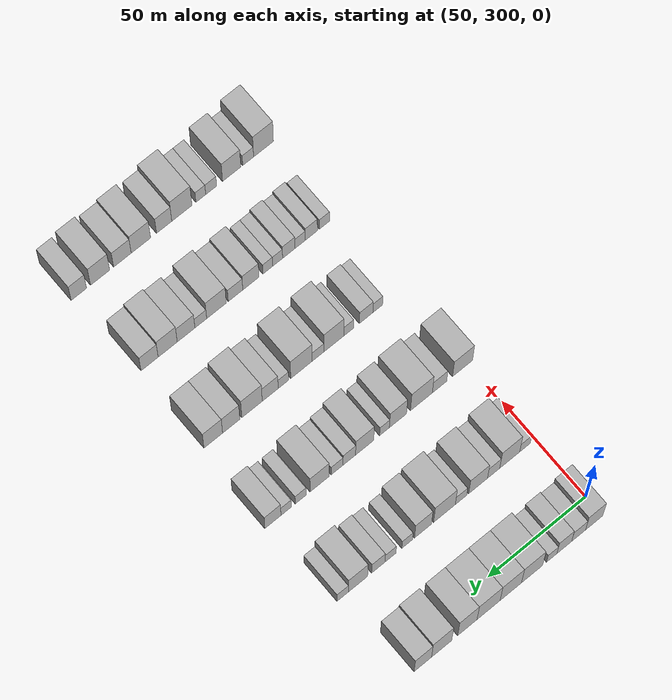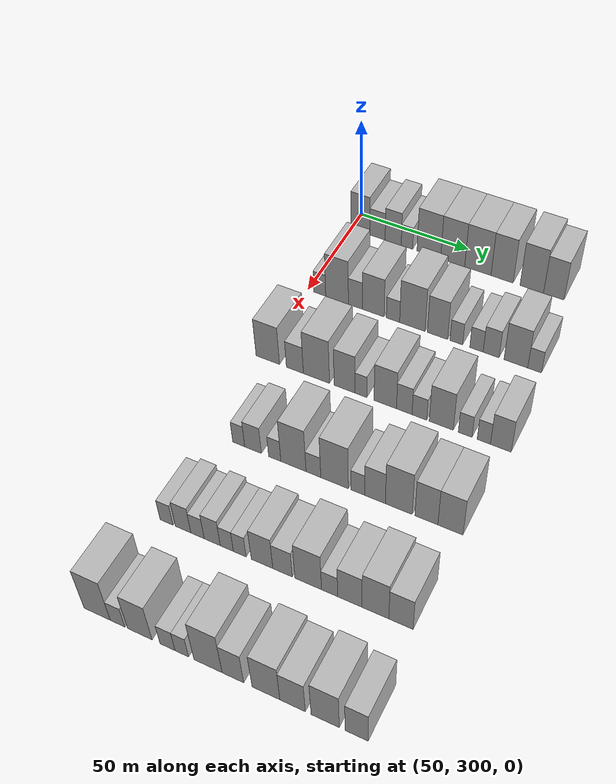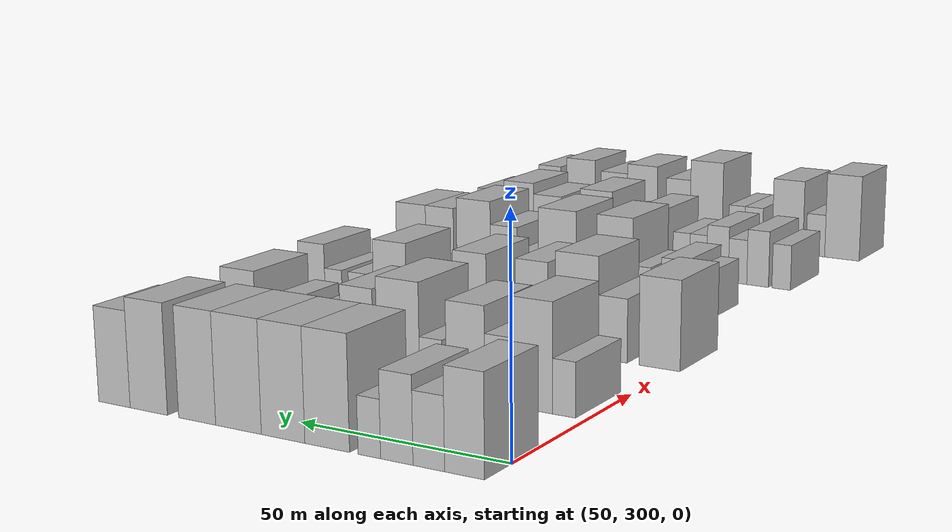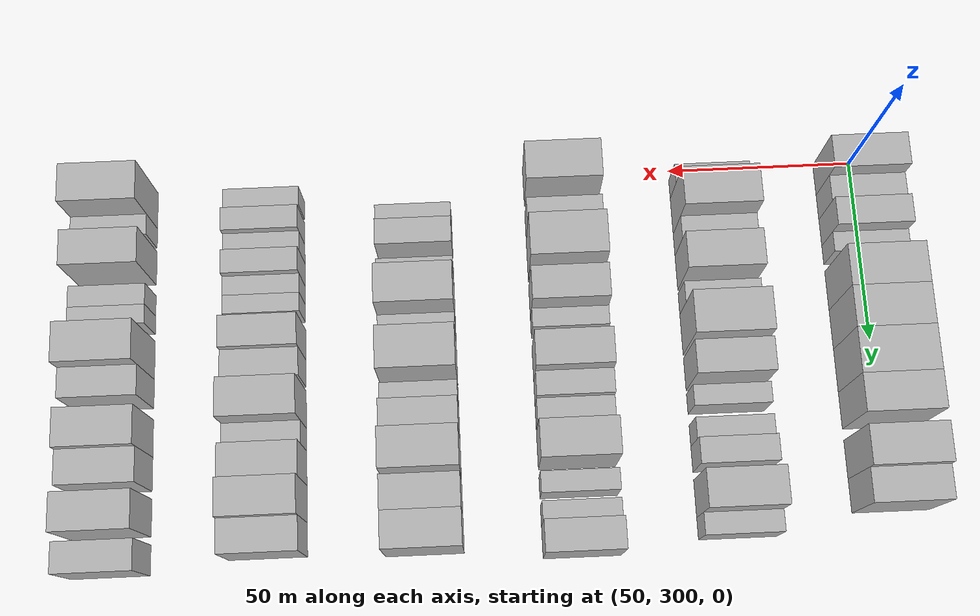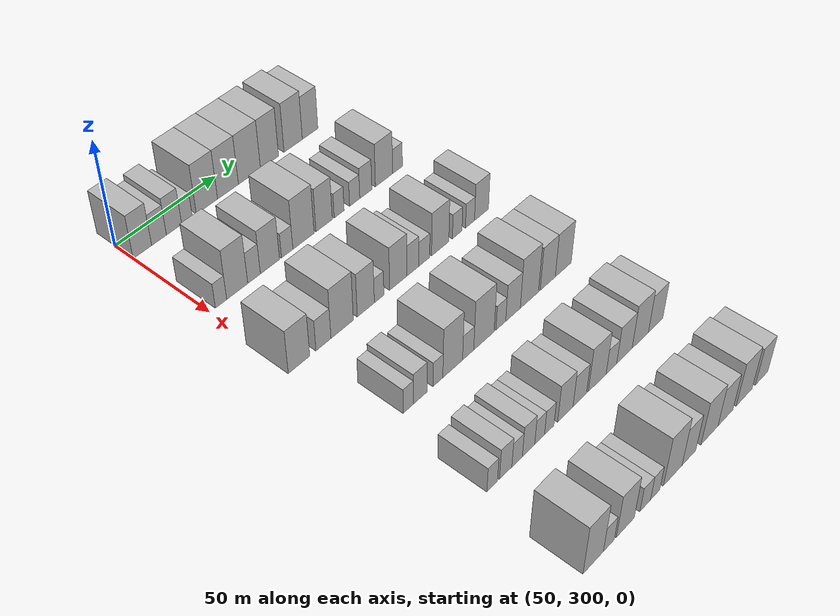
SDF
<sdf version="1.6">
 <world name="default">
  <model name="building_108">
   <static>1</static>
   <pose>50.0000 304.3852 0 0.000000 0.000000 0.000000</pose>
   <link name="link">
    <pose>0 0 10.50 0 0 0</pose>
    <collision name="collision"><geometry><box><size>20.0000 8.8271 21.0000</size></box></geometry></collision>
    <visual name="visual">
     <cast_shadows>0</cast_shadows>
     <geometry><box><size>20.0000 8.8271 21.0000</size></box></geometry>
     <material>
      <script>
       <uri>model://HANNAS_wall/materials/scripts</uri>
       <uri>model://HANNAS_wall/materials/textures</uri>
       <name>vrc/HANNAS_wall</name>
      </script>
     </material>
    </visual>
   </link>
  </model>
  <model name="building_109">
   <static>1</static>
   <pose>50.0000 312.3710 0 0.000000 0.000000 0.000000</pose>
   <link name="link">
    <pose>0 0 7.50 0 0 0</pose>
    <collision name="collision"><geometry><box><size>20.0000 7.1447 15.0000</size></box></geometry></collision>
    <visual name="visual">
     <cast_shadows>0</cast_shadows>
     <geometry><box><size>20.0000 7.1447 15.0000</size></box></geometry>
     <material>
      <script>
       <uri>model://HANNAS_wall/materials/scripts</uri>
       <uri>model://HANNAS_wall/materials/textures</uri>
       <name>vrc/HANNAS_wall</name>
      </script>
     </material>
    </visual>
   </link>
  </model>
  <model name="building_110">
   <static>1</static>
   <pose>50.0000 319.6907 0 0.000000 0.000000 0.000000</pose>
   <link name="link">
    <pose>0 0 9.00 0 0 0</pose>
    <collision name="collision"><geometry><box><size>20.0000 7.4947 18.0000</size></box></geometry></collision>
    <visual name="visual">
     <cast_shadows>0</cast_shadows>
     <geometry><box><size>20.0000 7.4947 18.0000</size></box></geometry>
     <material>
      <script>
       <uri>model://HANNAS_wall/materials/scripts</uri>
       <uri>model://HANNAS_wall/materials/textures</uri>
       <name>vrc/HANNAS_wall</name>
      </script>
     </material>
    </visual>
   </link>
  </model>
  <model name="building_111">
   <static>1</static>
   <pose>50.0000 326.0862 0 0.000000 0.000000 0.000000</pose>
   <link name="link">
    <pose>0 0 6.00 0 0 0</pose>
    <collision name="collision"><geometry><box><size>20.0000 5.2963 12.0000</size></box></geometry></collision>
    <visual name="visual">
     <cast_shadows>0</cast_shadows>
     <geometry><box><size>20.0000 5.2963 12.0000</size></box></geometry>
     <material>
      <script>
       <uri>model://HANNAS_wall/materials/scripts</uri>
       <uri>model://HANNAS_wall/materials/textures</uri>
       <name>vrc/HANNAS_wall</name>
      </script>
     </material>
    </visual>
   </link>
  </model>
  <model name="building_112">
   <static>1</static>
   <pose>50.0000 336.1368 0 0.000000 0.000000 0.000000</pose>
   <link name="link">
    <pose>0 0 12.00 0 0 0</pose>
    <collision name="collision"><geometry><box><size>20.0000 10.8048 24.0000</size></box></geometry></collision>
    <visual name="visual">
     <cast_shadows>0</cast_shadows>
     <geometry><box><size>20.0000 10.8048 24.0000</size></box></geometry>
     <material>
      <script>
       <uri>model://HANNAS_wall/materials/scripts</uri>
       <uri>model://HANNAS_wall/materials/textures</uri>
       <name>vrc/HANNAS_wall</name>
      </script>
     </material>
    </visual>
   </link>
  </model>
  <model name="building_113">
   <static>1</static>
   <pose>50.0000 346.9473 0 0.000000 0.000000 0.000000</pose>
   <link name="link">
    <pose>0 0 12.00 0 0 0</pose>
    <collision name="collision"><geometry><box><size>20.0000 10.8162 24.0000</size></box></geometry></collision>
    <visual name="visual">
     <cast_shadows>0</cast_shadows>
     <geometry><box><size>20.0000 10.8162 24.0000</size></box></geometry>
     <material>
      <script>
       <uri>model://HANNAS_wall/materials/scripts</uri>
       <uri>model://HANNAS_wall/materials/textures</uri>
       <name>vrc/HANNAS_wall</name>
      </script>
     </material>
    </visual>
   </link>
  </model>
  <model name="building_114">
   <static>1</static>
   <pose>50.0000 358.2069 0 0.000000 0.000000 0.000000</pose>
   <link name="link">
    <pose>0 0 12.00 0 0 0</pose>
    <collision name="collision"><geometry><box><size>20.0000 11.7032 24.0000</size></box></geometry></collision>
    <visual name="visual">
     <cast_shadows>0</cast_shadows>
     <geometry><box><size>20.0000 11.7032 24.0000</size></box></geometry>
     <material>
      <script>
       <uri>model://HANNAS_wall/materials/scripts</uri>
       <uri>model://HANNAS_wall/materials/textures</uri>
       <name>vrc/HANNAS_wall</name>
      </script>
     </material>
    </visual>
   </link>
  </model>
  <model name="building_115">
   <static>1</static>
   <pose>50.0000 368.9374 0 0.000000 0.000000 0.000000</pose>
   <link name="link">
    <pose>0 0 12.00 0 0 0</pose>
    <collision name="collision"><geometry><box><size>20.0000 9.7577 24.0000</size></box></geometry></collision>
    <visual name="visual">
     <cast_shadows>0</cast_shadows>
     <geometry><box><size>20.0000 9.7577 24.0000</size></box></geometry>
     <material>
      <script>
       <uri>model://HANNAS_wall/materials/scripts</uri>
       <uri>model://HANNAS_wall/materials/textures</uri>
       <name>vrc/HANNAS_wall</name>
      </script>
     </material>
    </visual>
   </link>
  </model>
  <model name="building_116">
   <static>1</static>
   <pose>50.0000 381.8913 0 0.000000 0.000000 0.000000</pose>
   <link name="link">
    <pose>0 0 12.00 0 0 0</pose>
    <collision name="collision"><geometry><box><size>20.0000 10.1501 24.0000</size></box></geometry></collision>
    <visual name="visual">
     <cast_shadows>0</cast_shadows>
     <geometry><box><size>20.0000 10.1501 24.0000</size></box></geometry>
     <material>
      <script>
       <uri>model://HANNAS_wall/materials/scripts</uri>
       <uri>model://HANNAS_wall/materials/textures</uri>
       <name>vrc/HANNAS_wall</name>
      </script>
     </material>
    </visual>
   </link>
  </model>
  <model name="building_117">
   <static>1</static>
   <pose>50.0000 391.3472 0 0.000000 0.000000 0.000000</pose>
   <link name="link">
    <pose>0 0 10.50 0 0 0</pose>
    <collision name="collision"><geometry><box><size>20.0000 8.7618 21.0000</size></box></geometry></collision>
    <visual name="visual">
     <cast_shadows>0</cast_shadows>
     <geometry><box><size>20.0000 8.7618 21.0000</size></box></geometry>
     <material>
      <script>
       <uri>model://HANNAS_wall/materials/scripts</uri>
       <uri>model://HANNAS_wall/materials/textures</uri>
       <name>vrc/HANNAS_wall</name>
      </script>
     </material>
    </visual>
   </link>
  </model>
  <model name="building_242">
   <static>1</static>
   <pose>90.0000 305.3645 0 0.000000 0.000000 0.000000</pose>
   <link name="link">
    <pose>0 0 6.00 0 0 0</pose>
    <collision name="collision"><geometry><box><size>20.0000 5.4269 12.0000</size></box></geometry></collision>
    <visual name="visual">
     <cast_shadows>0</cast_shadows>
     <geometry><box><size>20.0000 5.4269 12.0000</size></box></geometry>
     <material>
      <script>
       <uri>model://HANNAS_wall/materials/scripts</uri>
       <uri>model://HANNAS_wall/materials/textures</uri>
       <name>vrc/HANNAS_wall</name>
      </script>
     </material>
    </visual>
   </link>
  </model>
  <model name="building_243">
   <static>1</static>
   <pose>90.0000 313.1966 0 0.000000 0.000000 0.000000</pose>
   <link name="link">
    <pose>0 0 12.00 0 0 0</pose>
    <collision name="collision"><geometry><box><size>20.0000 10.2372 24.0000</size></box></geometry></collision>
    <visual name="visual">
     <cast_shadows>0</cast_shadows>
     <geometry><box><size>20.0000 10.2372 24.0000</size></box></geometry>
     <material>
      <script>
       <uri>model://HANNAS_wall/materials/scripts</uri>
       <uri>model://HANNAS_wall/materials/textures</uri>
       <name>vrc/HANNAS_wall</name>
      </script>
     </material>
    </visual>
   </link>
  </model>
  <model name="building_244">
   <static>1</static>
   <pose>90.0000 321.4383 0 0.000000 0.000000 0.000000</pose>
   <link name="link">
    <pose>0 0 7.50 0 0 0</pose>
    <collision name="collision"><geometry><box><size>20.0000 6.2464 15.0000</size></box></geometry></collision>
    <visual name="visual">
     <cast_shadows>0</cast_shadows>
     <geometry><box><size>20.0000 6.2464 15.0000</size></box></geometry>
     <material>
      <script>
       <uri>model://HANNAS_wall/materials/scripts</uri>
       <uri>model://HANNAS_wall/materials/textures</uri>
       <name>vrc/HANNAS_wall</name>
      </script>
     </material>
    </visual>
   </link>
  </model>
  <model name="building_245">
   <static>1</static>
   <pose>90.0000 329.3752 0 0.000000 0.000000 0.000000</pose>
   <link name="link">
    <pose>0 0 10.50 0 0 0</pose>
    <collision name="collision"><geometry><box><size>20.0000 9.6274 21.0000</size></box></geometry></collision>
    <visual name="visual">
     <cast_shadows>0</cast_shadows>
     <geometry><box><size>20.0000 9.6274 21.0000</size></box></geometry>
     <material>
      <script>
       <uri>model://HANNAS_wall/materials/scripts</uri>
       <uri>model://HANNAS_wall/materials/textures</uri>
       <name>vrc/HANNAS_wall</name>
      </script>
     </material>
    </visual>
   </link>
  </model>
  <model name="building_246">
   <static>1</static>
   <pose>90.0000 338.0972 0 0.000000 0.000000 0.000000</pose>
   <link name="link">
    <pose>0 0 6.00 0 0 0</pose>
    <collision name="collision"><geometry><box><size>20.0000 5.8167 12.0000</size></box></geometry></collision>
    <visual name="visual">
     <cast_shadows>0</cast_shadows>
     <geometry><box><size>20.0000 5.8167 12.0000</size></box></geometry>
     <material>
      <script>
       <uri>model://HANNAS_wall/materials/scripts</uri>
       <uri>model://HANNAS_wall/materials/textures</uri>
       <name>vrc/HANNAS_wall</name>
      </script>
     </material>
    </visual>
   </link>
  </model>
  <model name="building_247">
   <static>1</static>
   <pose>90.0000 346.5322 0 0.000000 0.000000 0.000000</pose>
   <link name="link">
    <pose>0 0 12.00 0 0 0</pose>
    <collision name="collision"><geometry><box><size>20.0000 11.0532 24.0000</size></box></geometry></collision>
    <visual name="visual">
     <cast_shadows>0</cast_shadows>
     <geometry><box><size>20.0000 11.0532 24.0000</size></box></geometry>
     <material>
      <script>
       <uri>model://HANNAS_wall/materials/scripts</uri>
       <uri>model://HANNAS_wall/materials/textures</uri>
       <name>vrc/HANNAS_wall</name>
      </script>
     </material>
    </visual>
   </link>
  </model>
  <model name="building_248">
   <static>1</static>
   <pose>90.0000 357.3961 0 0.000000 0.000000 0.000000</pose>
   <link name="link">
    <pose>0 0 10.50 0 0 0</pose>
    <collision name="collision"><geometry><box><size>20.0000 8.6745 21.0000</size></box></geometry></collision>
    <visual name="visual">
     <cast_shadows>0</cast_shadows>
     <geometry><box><size>20.0000 8.6745 21.0000</size></box></geometry>
     <material>
      <script>
       <uri>model://HANNAS_wall/materials/scripts</uri>
       <uri>model://HANNAS_wall/materials/textures</uri>
       <name>vrc/HANNAS_wall</name>
      </script>
     </material>
    </visual>
   </link>
  </model>
  <model name="building_249">
   <static>1</static>
   <pose>90.0000 365.4251 0 0.000000 0.000000 0.000000</pose>
   <link name="link">
    <pose>0 0 6.00 0 0 0</pose>
    <collision name="collision"><geometry><box><size>20.0000 5.3835 12.0000</size></box></geometry></collision>
    <visual name="visual">
     <cast_shadows>0</cast_shadows>
     <geometry><box><size>20.0000 5.3835 12.0000</size></box></geometry>
     <material>
      <script>
       <uri>model://HANNAS_wall/materials/scripts</uri>
       <uri>model://HANNAS_wall/materials/textures</uri>
       <name>vrc/HANNAS_wall</name>
      </script>
     </material>
    </visual>
   </link>
  </model>
  <model name="building_250">
   <static>1</static>
   <pose>90.0000 373.9114 0 0.000000 0.000000 0.000000</pose>
   <link name="link">
    <pose>0 0 6.00 0 0 0</pose>
    <collision name="collision"><geometry><box><size>20.0000 5.5892 12.0000</size></box></geometry></collision>
    <visual name="visual">
     <cast_shadows>0</cast_shadows>
     <geometry><box><size>20.0000 5.5892 12.0000</size></box></geometry>
     <material>
      <script>
       <uri>model://HANNAS_wall/materials/scripts</uri>
       <uri>model://HANNAS_wall/materials/textures</uri>
       <name>vrc/HANNAS_wall</name>
      </script>
     </material>
    </visual>
   </link>
  </model>
  <model name="building_251">
   <static>1</static>
   <pose>90.0000 380.0523 0 0.000000 0.000000 0.000000</pose>
   <link name="link">
    <pose>0 0 7.50 0 0 0</pose>
    <collision name="collision"><geometry><box><size>20.0000 6.6927 15.0000</size></box></geometry></collision>
    <visual name="visual">
     <cast_shadows>0</cast_shadows>
     <geometry><box><size>20.0000 6.6927 15.0000</size></box></geometry>
     <material>
      <script>
       <uri>model://HANNAS_wall/materials/scripts</uri>
       <uri>model://HANNAS_wall/materials/textures</uri>
       <name>vrc/HANNAS_wall</name>
      </script>
     </material>
    </visual>
   </link>
  </model>
  <model name="building_252">
   <static>1</static>
   <pose>90.0000 390.2732 0 0.000000 0.000000 0.000000</pose>
   <link name="link">
    <pose>0 0 10.50 0 0 0</pose>
    <collision name="collision"><geometry><box><size>20.0000 9.7490 21.0000</size></box></geometry></collision>
    <visual name="visual">
     <cast_shadows>0</cast_shadows>
     <geometry><box><size>20.0000 9.7490 21.0000</size></box></geometry>
     <material>
      <script>
       <uri>model://HANNAS_wall/materials/scripts</uri>
       <uri>model://HANNAS_wall/materials/textures</uri>
       <name>vrc/HANNAS_wall</name>
      </script>
     </material>
    </visual>
   </link>
  </model>
  <model name="building_253">
   <static>1</static>
   <pose>90.0000 397.9771 0 0.000000 0.000000 0.000000</pose>
   <link name="link">
    <pose>0 0 6.00 0 0 0</pose>
    <collision name="collision"><geometry><box><size>20.0000 5.6587 12.0000</size></box></geometry></collision>
    <visual name="visual">
     <cast_shadows>0</cast_shadows>
     <geometry><box><size>20.0000 5.6587 12.0000</size></box></geometry>
     <material>
      <script>
       <uri>model://HANNAS_wall/materials/scripts</uri>
       <uri>model://HANNAS_wall/materials/textures</uri>
       <name>vrc/HANNAS_wall</name>
      </script>
     </material>
    </visual>
   </link>
  </model>
  <model name="building_380">
   <static>1</static>
   <pose>130.0000 303.2413 0 0.000000 0.000000 0.000000</pose>
   <link name="link">
    <pose>0 0 10.50 0 0 0</pose>
    <collision name="collision"><geometry><box><size>20.0000 10.2960 21.0000</size></box></geometry></collision>
    <visual name="visual">
     <cast_shadows>0</cast_shadows>
     <geometry><box><size>20.0000 10.2960 21.0000</size></box></geometry>
     <material>
      <script>
       <uri>model://HANNAS_wall/materials/scripts</uri>
       <uri>model://HANNAS_wall/materials/textures</uri>
       <name>vrc/HANNAS_wall</name>
      </script>
     </material>
    </visual>
   </link>
  </model>
  <model name="building_381">
   <static>1</static>
   <pose>130.0000 315.0753 0 0.000000 0.000000 0.000000</pose>
   <link name="link">
    <pose>0 0 7.50 0 0 0</pose>
    <collision name="collision"><geometry><box><size>20.0000 7.3721 15.0000</size></box></geometry></collision>
    <visual name="visual">
     <cast_shadows>0</cast_shadows>
     <geometry><box><size>20.0000 7.3721 15.0000</size></box></geometry>
     <material>
      <script>
       <uri>model://HANNAS_wall/materials/scripts</uri>
       <uri>model://HANNAS_wall/materials/textures</uri>
       <name>vrc/HANNAS_wall</name>
      </script>
     </material>
    </visual>
   </link>
  </model>
  <model name="building_382">
   <static>1</static>
   <pose>130.0000 324.3730 0 0.000000 0.000000 0.000000</pose>
   <link name="link">
    <pose>0 0 12.00 0 0 0</pose>
    <collision name="collision"><geometry><box><size>20.0000 11.2233 24.0000</size></box></geometry></collision>
    <visual name="visual">
     <cast_shadows>0</cast_shadows>
     <geometry><box><size>20.0000 11.2233 24.0000</size></box></geometry>
     <material>
      <script>
       <uri>model://HANNAS_wall/materials/scripts</uri>
       <uri>model://HANNAS_wall/materials/textures</uri>
       <name>vrc/HANNAS_wall</name>
      </script>
     </material>
    </visual>
   </link>
  </model>
  <model name="building_383">
   <static>1</static>
   <pose>130.0000 336.3679 0 0.000000 0.000000 0.000000</pose>
   <link name="link">
    <pose>0 0 10.50 0 0 0</pose>
    <collision name="collision"><geometry><box><size>20.0000 8.7663 21.0000</size></box></geometry></collision>
    <visual name="visual">
     <cast_shadows>0</cast_shadows>
     <geometry><box><size>20.0000 8.7663 21.0000</size></box></geometry>
     <material>
      <script>
       <uri>model://HANNAS_wall/materials/scripts</uri>
       <uri>model://HANNAS_wall/materials/textures</uri>
       <name>vrc/HANNAS_wall</name>
      </script>
     </material>
    </visual>
   </link>
  </model>
  <model name="building_384">
   <static>1</static>
   <pose>130.0000 343.2491 0 0.000000 0.000000 0.000000</pose>
   <link name="link">
    <pose>0 0 6.00 0 0 0</pose>
    <collision name="collision"><geometry><box><size>20.0000 4.9962 12.0000</size></box></geometry></collision>
    <visual name="visual">
     <cast_shadows>0</cast_shadows>
     <geometry><box><size>20.0000 4.9962 12.0000</size></box></geometry>
     <material>
      <script>
       <uri>model://HANNAS_wall/materials/scripts</uri>
       <uri>model://HANNAS_wall/materials/textures</uri>
       <name>vrc/HANNAS_wall</name>
      </script>
     </material>
    </visual>
   </link>
  </model>
  <model name="building_385">
   <static>1</static>
   <pose>130.0000 353.3660 0 0.000000 0.000000 0.000000</pose>
   <link name="link">
    <pose>0 0 10.50 0 0 0</pose>
    <collision name="collision"><geometry><box><size>20.0000 9.2375 21.0000</size></box></geometry></collision>
    <visual name="visual">
     <cast_shadows>0</cast_shadows>
     <geometry><box><size>20.0000 9.2375 21.0000</size></box></geometry>
     <material>
      <script>
       <uri>model://HANNAS_wall/materials/scripts</uri>
       <uri>model://HANNAS_wall/materials/textures</uri>
       <name>vrc/HANNAS_wall</name>
      </script>
     </material>
    </visual>
   </link>
  </model>
  <model name="building_386">
   <static>1</static>
   <pose>130.0000 361.1865 0 0.000000 0.000000 0.000000</pose>
   <link name="link">
    <pose>0 0 7.50 0 0 0</pose>
    <collision name="collision"><geometry><box><size>20.0000 6.4036 15.0000</size></box></geometry></collision>
    <visual name="visual">
     <cast_shadows>0</cast_shadows>
     <geometry><box><size>20.0000 6.4036 15.0000</size></box></geometry>
     <material>
      <script>
       <uri>model://HANNAS_wall/materials/scripts</uri>
       <uri>model://HANNAS_wall/materials/textures</uri>
       <name>vrc/HANNAS_wall</name>
      </script>
     </material>
    </visual>
   </link>
  </model>
  <model name="building_387">
   <static>1</static>
   <pose>130.0000 367.3840 0 0.000000 0.000000 0.000000</pose>
   <link name="link">
    <pose>0 0 6.00 0 0 0</pose>
    <collision name="collision"><geometry><box><size>20.0000 5.9913 12.0000</size></box></geometry></collision>
    <visual name="visual">
     <cast_shadows>0</cast_shadows>
     <geometry><box><size>20.0000 5.9913 12.0000</size></box></geometry>
     <material>
      <script>
       <uri>model://HANNAS_wall/materials/scripts</uri>
       <uri>model://HANNAS_wall/materials/textures</uri>
       <name>vrc/HANNAS_wall</name>
      </script>
     </material>
    </visual>
   </link>
  </model>
  <model name="building_388">
   <static>1</static>
   <pose>130.0000 376.2067 0 0.000000 0.000000 0.000000</pose>
   <link name="link">
    <pose>0 0 10.50 0 0 0</pose>
    <collision name="collision"><geometry><box><size>20.0000 9.6541 21.0000</size></box></geometry></collision>
    <visual name="visual">
     <cast_shadows>0</cast_shadows>
     <geometry><box><size>20.0000 9.6541 21.0000</size></box></geometry>
     <material>
      <script>
       <uri>model://HANNAS_wall/materials/scripts</uri>
       <uri>model://HANNAS_wall/materials/textures</uri>
       <name>vrc/HANNAS_wall</name>
      </script>
     </material>
    </visual>
   </link>
  </model>
  <model name="building_389">
   <static>1</static>
   <pose>130.0000 385.7761 0 0.000000 0.000000 0.000000</pose>
   <link name="link">
    <pose>0 0 6.00 0 0 0</pose>
    <collision name="collision"><geometry><box><size>20.0000 5.4847 12.0000</size></box></geometry></collision>
    <visual name="visual">
     <cast_shadows>0</cast_shadows>
     <geometry><box><size>20.0000 5.4847 12.0000</size></box></geometry>
     <material>
      <script>
       <uri>model://HANNAS_wall/materials/scripts</uri>
       <uri>model://HANNAS_wall/materials/textures</uri>
       <name>vrc/HANNAS_wall</name>
      </script>
     </material>
    </visual>
   </link>
  </model>
  <model name="building_390">
   <static>1</static>
   <pose>130.0000 393.1145 0 0.000000 0.000000 0.000000</pose>
   <link name="link">
    <pose>0 0 6.00 0 0 0</pose>
    <collision name="collision"><geometry><box><size>20.0000 5.1921 12.0000</size></box></geometry></collision>
    <visual name="visual">
     <cast_shadows>0</cast_shadows>
     <geometry><box><size>20.0000 5.1921 12.0000</size></box></geometry>
     <material>
      <script>
       <uri>model://HANNAS_wall/materials/scripts</uri>
       <uri>model://HANNAS_wall/materials/textures</uri>
       <name>vrc/HANNAS_wall</name>
      </script>
     </material>
    </visual>
   </link>
  </model>
  <model name="building_391">
   <static>1</static>
   <pose>130.0000 399.7713 0 0.000000 0.000000 0.000000</pose>
   <link name="link">
    <pose>0 0 9.00 0 0 0</pose>
    <collision name="collision"><geometry><box><size>20.0000 8.1214 18.0000</size></box></geometry></collision>
    <visual name="visual">
     <cast_shadows>0</cast_shadows>
     <geometry><box><size>20.0000 8.1214 18.0000</size></box></geometry>
     <material>
      <script>
       <uri>model://HANNAS_wall/materials/scripts</uri>
       <uri>model://HANNAS_wall/materials/textures</uri>
       <name>vrc/HANNAS_wall</name>
      </script>
     </material>
    </visual>
   </link>
  </model>
  <model name="building_519">
   <static>1</static>
   <pose>170.0000 313.0797 0 0.000000 0.000000 0.000000</pose>
   <link name="link">
    <pose>0 0 6.00 0 0 0</pose>
    <collision name="collision"><geometry><box><size>20.0000 4.9767 12.0000</size></box></geometry></collision>
    <visual name="visual">
     <cast_shadows>0</cast_shadows>
     <geometry><box><size>20.0000 4.9767 12.0000</size></box></geometry>
     <material>
      <script>
       <uri>model://HANNAS_wall/materials/scripts</uri>
       <uri>model://HANNAS_wall/materials/textures</uri>
       <name>vrc/HANNAS_wall</name>
      </script>
     </material>
    </visual>
   </link>
  </model>
  <model name="building_520">
   <static>1</static>
   <pose>170.0000 319.0370 0 0.000000 0.000000 0.000000</pose>
   <link name="link">
    <pose>0 0 7.50 0 0 0</pose>
    <collision name="collision"><geometry><box><size>20.0000 6.9378 15.0000</size></box></geometry></collision>
    <visual name="visual">
     <cast_shadows>0</cast_shadows>
     <geometry><box><size>20.0000 6.9378 15.0000</size></box></geometry>
     <material>
      <script>
       <uri>model://HANNAS_wall/materials/scripts</uri>
       <uri>model://HANNAS_wall/materials/textures</uri>
       <name>vrc/HANNAS_wall</name>
      </script>
     </material>
    </visual>
   </link>
  </model>
  <model name="building_521">
   <static>1</static>
   <pose>170.0000 328.0158 0 0.000000 0.000000 0.000000</pose>
   <link name="link">
    <pose>0 0 6.00 0 0 0</pose>
    <collision name="collision"><geometry><box><size>20.0000 5.0199 12.0000</size></box></geometry></collision>
    <visual name="visual">
     <cast_shadows>0</cast_shadows>
     <geometry><box><size>20.0000 5.0199 12.0000</size></box></geometry>
     <material>
      <script>
       <uri>model://HANNAS_wall/materials/scripts</uri>
       <uri>model://HANNAS_wall/materials/textures</uri>
       <name>vrc/HANNAS_wall</name>
      </script>
     </material>
    </visual>
   </link>
  </model>
  <model name="building_522">
   <static>1</static>
   <pose>170.0000 335.6362 0 0.000000 0.000000 0.000000</pose>
   <link name="link">
    <pose>0 0 12.00 0 0 0</pose>
    <collision name="collision"><geometry><box><size>20.0000 10.2207 24.0000</size></box></geometry></collision>
    <visual name="visual">
     <cast_shadows>0</cast_shadows>
     <geometry><box><size>20.0000 10.2207 24.0000</size></box></geometry>
     <material>
      <script>
       <uri>model://HANNAS_wall/materials/scripts</uri>
       <uri>model://HANNAS_wall/materials/textures</uri>
       <name>vrc/HANNAS_wall</name>
      </script>
     </material>
    </visual>
   </link>
  </model>
  <model name="building_523">
   <static>1</static>
   <pose>170.0000 343.7098 0 0.000000 0.000000 0.000000</pose>
   <link name="link">
    <pose>0 0 6.00 0 0 0</pose>
    <collision name="collision"><geometry><box><size>20.0000 5.9266 12.0000</size></box></geometry></collision>
    <visual name="visual">
     <cast_shadows>0</cast_shadows>
     <geometry><box><size>20.0000 5.9266 12.0000</size></box></geometry>
     <material>
      <script>
       <uri>model://HANNAS_wall/materials/scripts</uri>
       <uri>model://HANNAS_wall/materials/textures</uri>
       <name>vrc/HANNAS_wall</name>
      </script>
     </material>
    </visual>
   </link>
  </model>
  <model name="building_524">
   <static>1</static>
   <pose>170.0000 352.1474 0 0.000000 0.000000 0.000000</pose>
   <link name="link">
    <pose>0 0 12.00 0 0 0</pose>
    <collision name="collision"><geometry><box><size>20.0000 10.9486 24.0000</size></box></geometry></collision>
    <visual name="visual">
     <cast_shadows>0</cast_shadows>
     <geometry><box><size>20.0000 10.9486 24.0000</size></box></geometry>
     <material>
      <script>
       <uri>model://HANNAS_wall/materials/scripts</uri>
       <uri>model://HANNAS_wall/materials/textures</uri>
       <name>vrc/HANNAS_wall</name>
      </script>
     </material>
    </visual>
   </link>
  </model>
  <model name="building_525">
   <static>1</static>
   <pose>170.0000 361.2970 0 0.000000 0.000000 0.000000</pose>
   <link name="link">
    <pose>0 0 6.00 0 0 0</pose>
    <collision name="collision"><geometry><box><size>20.0000 5.3506 12.0000</size></box></geometry></collision>
    <visual name="visual">
     <cast_shadows>0</cast_shadows>
     <geometry><box><size>20.0000 5.3506 12.0000</size></box></geometry>
     <material>
      <script>
       <uri>model://HANNAS_wall/materials/scripts</uri>
       <uri>model://HANNAS_wall/materials/textures</uri>
       <name>vrc/HANNAS_wall</name>
      </script>
     </material>
    </visual>
   </link>
  </model>
  <model name="building_526">
   <static>1</static>
   <pose>170.0000 368.0302 0 0.000000 0.000000 0.000000</pose>
   <link name="link">
    <pose>0 0 9.00 0 0 0</pose>
    <collision name="collision"><geometry><box><size>20.0000 8.1158 18.0000</size></box></geometry></collision>
    <visual name="visual">
     <cast_shadows>0</cast_shadows>
     <geometry><box><size>20.0000 8.1158 18.0000</size></box></geometry>
     <material>
      <script>
       <uri>model://HANNAS_wall/materials/scripts</uri>
       <uri>model://HANNAS_wall/materials/textures</uri>
       <name>vrc/HANNAS_wall</name>
      </script>
     </material>
    </visual>
   </link>
  </model>
  <model name="building_527">
   <static>1</static>
   <pose>170.0000 377.2524 0 0.000000 0.000000 0.000000</pose>
   <link name="link">
    <pose>0 0 12.00 0 0 0</pose>
    <collision name="collision"><geometry><box><size>20.0000 10.3286 24.0000</size></box></geometry></collision>
    <visual name="visual">
     <cast_shadows>0</cast_shadows>
     <geometry><box><size>20.0000 10.3286 24.0000</size></box></geometry>
     <material>
      <script>
       <uri>model://HANNAS_wall/materials/scripts</uri>
       <uri>model://HANNAS_wall/materials/textures</uri>
       <name>vrc/HANNAS_wall</name>
      </script>
     </material>
    </visual>
   </link>
  </model>
  <model name="building_528">
   <static>1</static>
   <pose>170.0000 387.7798 0 0.000000 0.000000 0.000000</pose>
   <link name="link">
    <pose>0 0 10.50 0 0 0</pose>
    <collision name="collision"><geometry><box><size>20.0000 8.7263 21.0000</size></box></geometry></collision>
    <visual name="visual">
     <cast_shadows>0</cast_shadows>
     <geometry><box><size>20.0000 8.7263 21.0000</size></box></geometry>
     <material>
      <script>
       <uri>model://HANNAS_wall/materials/scripts</uri>
       <uri>model://HANNAS_wall/materials/textures</uri>
       <name>vrc/HANNAS_wall</name>
      </script>
     </material>
    </visual>
   </link>
  </model>
  <model name="building_529">
   <static>1</static>
   <pose>170.0000 396.8475 0 0.000000 0.000000 0.000000</pose>
   <link name="link">
    <pose>0 0 10.50 0 0 0</pose>
    <collision name="collision"><geometry><box><size>20.0000 9.4091 21.0000</size></box></geometry></collision>
    <visual name="visual">
     <cast_shadows>0</cast_shadows>
     <geometry><box><size>20.0000 9.4091 21.0000</size></box></geometry>
     <material>
      <script>
       <uri>model://HANNAS_wall/materials/scripts</uri>
       <uri>model://HANNAS_wall/materials/textures</uri>
       <name>vrc/HANNAS_wall</name>
      </script>
     </material>
    </visual>
   </link>
  </model>
  <model name="building_658">
   <static>1</static>
   <pose>210.0000 307.0583 0 0.000000 0.000000 0.000000</pose>
   <link name="link">
    <pose>0 0 6.00 0 0 0</pose>
    <collision name="collision"><geometry><box><size>20.0000 5.2232 12.0000</size></box></geometry></collision>
    <visual name="visual">
     <cast_shadows>0</cast_shadows>
     <geometry><box><size>20.0000 5.2232 12.0000</size></box></geometry>
     <material>
      <script>
       <uri>model://HANNAS_wall/materials/scripts</uri>
       <uri>model://HANNAS_wall/materials/textures</uri>
       <name>vrc/HANNAS_wall</name>
      </script>
     </material>
    </visual>
   </link>
  </model>
  <model name="building_659">
   <static>1</static>
   <pose>210.0000 313.7751 0 0.000000 0.000000 0.000000</pose>
   <link name="link">
    <pose>0 0 7.50 0 0 0</pose>
    <collision name="collision"><geometry><box><size>20.0000 6.2105 15.0000</size></box></geometry></collision>
    <visual name="visual">
     <cast_shadows>0</cast_shadows>
     <geometry><box><size>20.0000 6.2105 15.0000</size></box></geometry>
     <material>
      <script>
       <uri>model://HANNAS_wall/materials/scripts</uri>
       <uri>model://HANNAS_wall/materials/textures</uri>
       <name>vrc/HANNAS_wall</name>
      </script>
     </material>
    </visual>
   </link>
  </model>
  <model name="building_660">
   <static>1</static>
   <pose>210.0000 319.5435 0 0.000000 0.000000 0.000000</pose>
   <link name="link">
    <pose>0 0 6.00 0 0 0</pose>
    <collision name="collision"><geometry><box><size>20.0000 5.3264 12.0000</size></box></geometry></collision>
    <visual name="visual">
     <cast_shadows>0</cast_shadows>
     <geometry><box><size>20.0000 5.3264 12.0000</size></box></geometry>
     <material>
      <script>
       <uri>model://HANNAS_wall/materials/scripts</uri>
       <uri>model://HANNAS_wall/materials/textures</uri>
       <name>vrc/HANNAS_wall</name>
      </script>
     </material>
    </visual>
   </link>
  </model>
  <model name="building_661">
   <static>1</static>
   <pose>210.0000 325.3913 0 0.000000 0.000000 0.000000</pose>
   <link name="link">
    <pose>0 0 7.50 0 0 0</pose>
    <collision name="collision"><geometry><box><size>20.0000 6.3692 15.0000</size></box></geometry></collision>
    <visual name="visual">
     <cast_shadows>0</cast_shadows>
     <geometry><box><size>20.0000 6.3692 15.0000</size></box></geometry>
     <material>
      <script>
       <uri>model://HANNAS_wall/materials/scripts</uri>
       <uri>model://HANNAS_wall/materials/textures</uri>
       <name>vrc/HANNAS_wall</name>
      </script>
     </material>
    </visual>
   </link>
  </model>
  <model name="building_662">
   <static>1</static>
   <pose>210.0000 331.1417 0 0.000000 0.000000 0.000000</pose>
   <link name="link">
    <pose>0 0 6.00 0 0 0</pose>
    <collision name="collision"><geometry><box><size>20.0000 5.1316 12.0000</size></box></geometry></collision>
    <visual name="visual">
     <cast_shadows>0</cast_shadows>
     <geometry><box><size>20.0000 5.1316 12.0000</size></box></geometry>
     <material>
      <script>
       <uri>model://HANNAS_wall/materials/scripts</uri>
       <uri>model://HANNAS_wall/materials/textures</uri>
       <name>vrc/HANNAS_wall</name>
      </script>
     </material>
    </visual>
   </link>
  </model>
  <model name="building_663">
   <static>1</static>
   <pose>210.0000 336.1970 0 0.000000 0.000000 0.000000</pose>
   <link name="link">
    <pose>0 0 6.00 0 0 0</pose>
    <collision name="collision"><geometry><box><size>20.0000 4.9791 12.0000</size></box></geometry></collision>
    <visual name="visual">
     <cast_shadows>0</cast_shadows>
     <geometry><box><size>20.0000 4.9791 12.0000</size></box></geometry>
     <material>
      <script>
       <uri>model://HANNAS_wall/materials/scripts</uri>
       <uri>model://HANNAS_wall/materials/textures</uri>
       <name>vrc/HANNAS_wall</name>
      </script>
     </material>
    </visual>
   </link>
  </model>
  <model name="building_664">
   <static>1</static>
   <pose>210.0000 344.8311 0 0.000000 0.000000 0.000000</pose>
   <link name="link">
    <pose>0 0 9.00 0 0 0</pose>
    <collision name="collision"><geometry><box><size>20.0000 8.2892 18.0000</size></box></geometry></collision>
    <visual name="visual">
     <cast_shadows>0</cast_shadows>
     <geometry><box><size>20.0000 8.2892 18.0000</size></box></geometry>
     <material>
      <script>
       <uri>model://HANNAS_wall/materials/scripts</uri>
       <uri>model://HANNAS_wall/materials/textures</uri>
       <name>vrc/HANNAS_wall</name>
      </script>
     </material>
    </visual>
   </link>
  </model>
  <model name="building_665">
   <static>1</static>
   <pose>210.0000 352.6753 0 0.000000 0.000000 0.000000</pose>
   <link name="link">
    <pose>0 0 7.50 0 0 0</pose>
    <collision name="collision"><geometry><box><size>20.0000 7.3992 15.0000</size></box></geometry></collision>
    <visual name="visual">
     <cast_shadows>0</cast_shadows>
     <geometry><box><size>20.0000 7.3992 15.0000</size></box></geometry>
     <material>
      <script>
       <uri>model://HANNAS_wall/materials/scripts</uri>
       <uri>model://HANNAS_wall/materials/textures</uri>
       <name>vrc/HANNAS_wall</name>
      </script>
     </material>
    </visual>
   </link>
  </model>
  <model name="building_666">
   <static>1</static>
   <pose>210.0000 362.3759 0 0.000000 0.000000 0.000000</pose>
   <link name="link">
    <pose>0 0 10.50 0 0 0</pose>
    <collision name="collision"><geometry><box><size>20.0000 10.0019 21.0000</size></box></geometry></collision>
    <visual name="visual">
     <cast_shadows>0</cast_shadows>
     <geometry><box><size>20.0000 10.0019 21.0000</size></box></geometry>
     <material>
      <script>
       <uri>model://HANNAS_wall/materials/scripts</uri>
       <uri>model://HANNAS_wall/materials/textures</uri>
       <name>vrc/HANNAS_wall</name>
      </script>
     </material>
    </visual>
   </link>
  </model>
  <model name="building_667">
   <static>1</static>
   <pose>210.0000 370.3736 0 0.000000 0.000000 0.000000</pose>
   <link name="link">
    <pose>0 0 6.00 0 0 0</pose>
    <collision name="collision"><geometry><box><size>20.0000 5.9935 12.0000</size></box></geometry></collision>
    <visual name="visual">
     <cast_shadows>0</cast_shadows>
     <geometry><box><size>20.0000 5.9935 12.0000</size></box></geometry>
     <material>
      <script>
       <uri>model://HANNAS_wall/materials/scripts</uri>
       <uri>model://HANNAS_wall/materials/textures</uri>
       <name>vrc/HANNAS_wall</name>
      </script>
     </material>
    </visual>
   </link>
  </model>
  <model name="building_668">
   <static>1</static>
   <pose>210.0000 377.8486 0 0.000000 0.000000 0.000000</pose>
   <link name="link">
    <pose>0 0 9.00 0 0 0</pose>
    <collision name="collision"><geometry><box><size>20.0000 8.9565 18.0000</size></box></geometry></collision>
    <visual name="visual">
     <cast_shadows>0</cast_shadows>
     <geometry><box><size>20.0000 8.9565 18.0000</size></box></geometry>
     <material>
      <script>
       <uri>model://HANNAS_wall/materials/scripts</uri>
       <uri>model://HANNAS_wall/materials/textures</uri>
       <name>vrc/HANNAS_wall</name>
      </script>
     </material>
    </visual>
   </link>
  </model>
  <model name="building_669">
   <static>1</static>
   <pose>210.0000 387.1639 0 0.000000 0.000000 0.000000</pose>
   <link name="link">
    <pose>0 0 10.50 0 0 0</pose>
    <collision name="collision"><geometry><box><size>20.0000 9.6742 21.0000</size></box></geometry></collision>
    <visual name="visual">
     <cast_shadows>0</cast_shadows>
     <geometry><box><size>20.0000 9.6742 21.0000</size></box></geometry>
     <material>
      <script>
       <uri>model://HANNAS_wall/materials/scripts</uri>
       <uri>model://HANNAS_wall/materials/textures</uri>
       <name>vrc/HANNAS_wall</name>
      </script>
     </material>
    </visual>
   </link>
  </model>
  <model name="building_670">
   <static>1</static>
   <pose>210.0000 396.3430 0 0.000000 0.000000 0.000000</pose>
   <link name="link">
    <pose>0 0 9.00 0 0 0</pose>
    <collision name="collision"><geometry><box><size>20.0000 8.6840 18.0000</size></box></geometry></collision>
    <visual name="visual">
     <cast_shadows>0</cast_shadows>
     <geometry><box><size>20.0000 8.6840 18.0000</size></box></geometry>
     <material>
      <script>
       <uri>model://HANNAS_wall/materials/scripts</uri>
       <uri>model://HANNAS_wall/materials/textures</uri>
       <name>vrc/HANNAS_wall</name>
      </script>
     </material>
    </visual>
   </link>
  </model>
  <model name="building_797">
   <static>1</static>
   <pose>250.0000 305.3251 0 0.000000 0.000000 0.000000</pose>
   <link name="link">
    <pose>0 0 12.00 0 0 0</pose>
    <collision name="collision"><geometry><box><size>20.0000 10.2343 24.0000</size></box></geometry></collision>
    <visual name="visual">
     <cast_shadows>0</cast_shadows>
     <geometry><box><size>20.0000 10.2343 24.0000</size></box></geometry>
     <material>
      <script>
       <uri>model://HANNAS_wall/materials/scripts</uri>
       <uri>model://HANNAS_wall/materials/textures</uri>
       <name>vrc/HANNAS_wall</name>
      </script>
     </material>
    </visual>
   </link>
  </model>
  <model name="building_798">
   <static>1</static>
   <pose>250.0000 313.2558 0 0.000000 0.000000 0.000000</pose>
   <link name="link">
    <pose>0 0 6.00 0 0 0</pose>
    <collision name="collision"><geometry><box><size>20.0000 5.6272 12.0000</size></box></geometry></collision>
    <visual name="visual">
     <cast_shadows>0</cast_shadows>
     <geometry><box><size>20.0000 5.6272 12.0000</size></box></geometry>
     <material>
      <script>
       <uri>model://HANNAS_wall/materials/scripts</uri>
       <uri>model://HANNAS_wall/materials/textures</uri>
       <name>vrc/HANNAS_wall</name>
      </script>
     </material>
    </visual>
   </link>
  </model>
  <model name="building_799">
   <static>1</static>
   <pose>250.0000 321.7691 0 0.000000 0.000000 0.000000</pose>
   <link name="link">
    <pose>0 0 10.50 0 0 0</pose>
    <collision name="collision"><geometry><box><size>20.0000 9.3993 21.0000</size></box></geometry></collision>
    <visual name="visual">
     <cast_shadows>0</cast_shadows>
     <geometry><box><size>20.0000 9.3993 21.0000</size></box></geometry>
     <material>
      <script>
       <uri>model://HANNAS_wall/materials/scripts</uri>
       <uri>model://HANNAS_wall/materials/textures</uri>
       <name>vrc/HANNAS_wall</name>
      </script>
     </material>
    </visual>
   </link>
  </model>
  <model name="building_800">
   <static>1</static>
   <pose>250.0000 332.2957 0 0.000000 0.000000 0.000000</pose>
   <link name="link">
    <pose>0 0 6.00 0 0 0</pose>
    <collision name="collision"><geometry><box><size>20.0000 5.6539 12.0000</size></box></geometry></collision>
    <visual name="visual">
     <cast_shadows>0</cast_shadows>
     <geometry><box><size>20.0000 5.6539 12.0000</size></box></geometry>
     <material>
      <script>
       <uri>model://HANNAS_wall/materials/scripts</uri>
       <uri>model://HANNAS_wall/materials/textures</uri>
       <name>vrc/HANNAS_wall</name>
      </script>
     </material>
    </visual>
   </link>
  </model>
  <model name="building_801">
   <static>1</static>
   <pose>250.0000 337.6417 0 0.000000 0.000000 0.000000</pose>
   <link name="link">
    <pose>0 0 6.00 0 0 0</pose>
    <collision name="collision"><geometry><box><size>20.0000 5.0381 12.0000</size></box></geometry></collision>
    <visual name="visual">
     <cast_shadows>0</cast_shadows>
     <geometry><box><size>20.0000 5.0381 12.0000</size></box></geometry>
     <material>
      <script>
       <uri>model://HANNAS_wall/materials/scripts</uri>
       <uri>model://HANNAS_wall/materials/textures</uri>
       <name>vrc/HANNAS_wall</name>
      </script>
     </material>
    </visual>
   </link>
  </model>
  <model name="building_802">
   <static>1</static>
   <pose>250.0000 347.3286 0 0.000000 0.000000 0.000000</pose>
   <link name="link">
    <pose>0 0 12.00 0 0 0</pose>
    <collision name="collision"><geometry><box><size>20.0000 10.3358 24.0000</size></box></geometry></collision>
    <visual name="visual">
     <cast_shadows>0</cast_shadows>
     <geometry><box><size>20.0000 10.3358 24.0000</size></box></geometry>
     <material>
      <script>
       <uri>model://HANNAS_wall/materials/scripts</uri>
       <uri>model://HANNAS_wall/materials/textures</uri>
       <name>vrc/HANNAS_wall</name>
      </script>
     </material>
    </visual>
   </link>
  </model>
  <model name="building_803">
   <static>1</static>
   <pose>250.0000 356.4067 0 0.000000 0.000000 0.000000</pose>
   <link name="link">
    <pose>0 0 9.00 0 0 0</pose>
    <collision name="collision"><geometry><box><size>20.0000 7.8203 18.0000</size></box></geometry></collision>
    <visual name="visual">
     <cast_shadows>0</cast_shadows>
     <geometry><box><size>20.0000 7.8203 18.0000</size></box></geometry>
     <material>
      <script>
       <uri>model://HANNAS_wall/materials/scripts</uri>
       <uri>model://HANNAS_wall/materials/textures</uri>
       <name>vrc/HANNAS_wall</name>
      </script>
     </material>
    </visual>
   </link>
  </model>
  <model name="building_804">
   <static>1</static>
   <pose>250.0000 368.2718 0 0.000000 0.000000 0.000000</pose>
   <link name="link">
    <pose>0 0 10.50 0 0 0</pose>
    <collision name="collision"><geometry><box><size>20.0000 9.9099 21.0000</size></box></geometry></collision>
    <visual name="visual">
     <cast_shadows>0</cast_shadows>
     <geometry><box><size>20.0000 9.9099 21.0000</size></box></geometry>
     <material>
      <script>
       <uri>model://HANNAS_wall/materials/scripts</uri>
       <uri>model://HANNAS_wall/materials/textures</uri>
       <name>vrc/HANNAS_wall</name>
      </script>
     </material>
    </visual>
   </link>
  </model>
  <model name="building_805">
   <static>1</static>
   <pose>250.0000 377.6889 0 0.000000 0.000000 0.000000</pose>
   <link name="link">
    <pose>0 0 9.00 0 0 0</pose>
    <collision name="collision"><geometry><box><size>20.0000 8.9243 18.0000</size></box></geometry></collision>
    <visual name="visual">
     <cast_shadows>0</cast_shadows>
     <geometry><box><size>20.0000 8.9243 18.0000</size></box></geometry>
     <material>
      <script>
       <uri>model://HANNAS_wall/materials/scripts</uri>
       <uri>model://HANNAS_wall/materials/textures</uri>
       <name>vrc/HANNAS_wall</name>
      </script>
     </material>
    </visual>
   </link>
  </model>
  <model name="building_806">
   <static>1</static>
   <pose>250.0000 389.0150 0 0.000000 0.000000 0.000000</pose>
   <link name="link">
    <pose>0 0 10.50 0 0 0</pose>
    <collision name="collision"><geometry><box><size>20.0000 9.7279 21.0000</size></box></geometry></collision>
    <visual name="visual">
     <cast_shadows>0</cast_shadows>
     <geometry><box><size>20.0000 9.7279 21.0000</size></box></geometry>
     <material>
      <script>
       <uri>model://HANNAS_wall/materials/scripts</uri>
       <uri>model://HANNAS_wall/materials/textures</uri>
       <name>vrc/HANNAS_wall</name>
      </script>
     </material>
    </visual>
   </link>
  </model>
  <model name="building_807">
   <static>1</static>
   <pose>250.0000 399.7854 0 0.000000 0.000000 0.000000</pose>
   <link name="link">
    <pose>0 0 9.00 0 0 0</pose>
    <collision name="collision"><geometry><box><size>20.0000 7.8131 18.0000</size></box></geometry></collision>
    <visual name="visual">
     <cast_shadows>0</cast_shadows>
     <geometry><box><size>20.0000 7.8131 18.0000</size></box></geometry>
     <material>
      <script>
       <uri>model://HANNAS_wall/materials/scripts</uri>
       <uri>model://HANNAS_wall/materials/textures</uri>
       <name>vrc/HANNAS_wall</name>
      </script>
     </material>
    </visual>
   </link>
  </model>
 </world>
</sdf>
